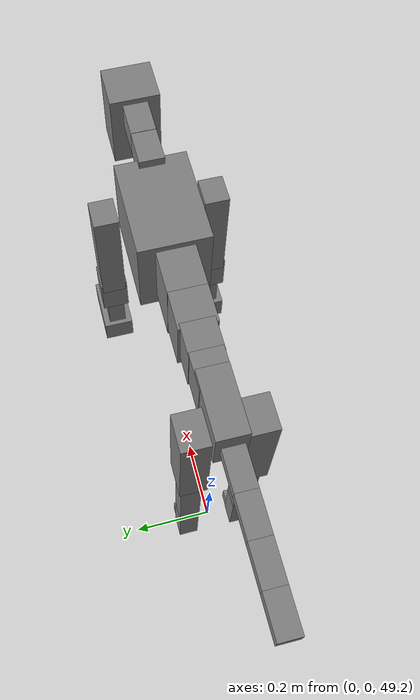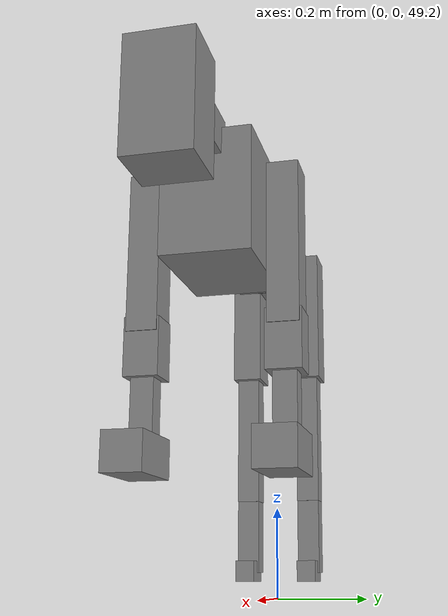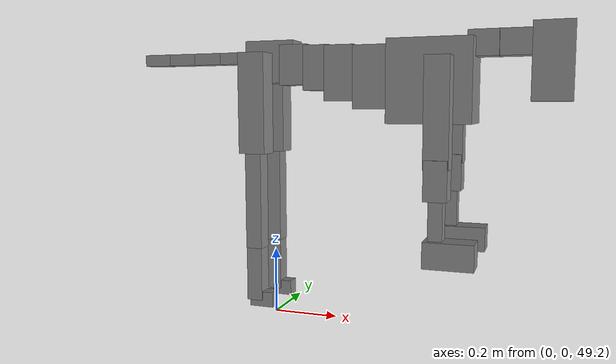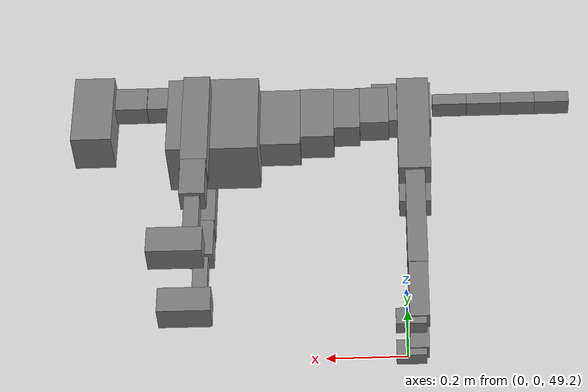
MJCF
<mujoco model="dog">

    <default>
        <joint armature="0.02" stiffness="1" damping="0.2" limited="true"/>
        <geom condim="3" friction="1 0.05 0.05" margin="0.01"/>
        <motor ctrllimited="true" ctrlrange="-1.0 1.0" forcelimited="true" gear="50"/>
    </default>

    <compiler inertiafromgeom="true" angle="radian"/>

    <option timestep="0.016" iterations="50" tolerance="1e-10" solver="Newton" jacobian="dense" cone="pyramidal"/>

    <size nconmax="20000" njmax="60000" nstack="5000000"/>
    <visual>
        <map force="0.1" zfar="30"/>
        <rgba haze="0.15 0.25 0.35 1"/>
        <quality shadowsize="2048"/>
        <global offwidth="800" offheight="800"/>
    </visual>

    <asset>
        <texture type="skybox" builtin="gradient" rgb1="0.3 0.5 0.7" rgb2="0 0 0" width="512" height="512"/>
        <texture name="texplane" type="2d" builtin="checker" rgb1=".2 .3 .4" rgb2=".1 0.15 0.2" width="512" height="512"
                 mark="cross" markrgb=".8 .8 .8"/>
        <texture name="texgeom" type="cube" builtin="flat" mark="cross" width="127" height="1278" rgb1="0.8 0.6 0.4"
                 rgb2="0.8 0.6 0.4" markrgb="1 1 1" random="0.01"/>

        <material name="matplane" reflectance="0.3" texture="texplane" texrepeat="1 1" texuniform="true"/>
        <material name="matgeom" texture="texgeom" texuniform="true" rgba="0.8 0.6 .4 1"/>
    </asset>

    <worldbody>
        <geom name="floor" pos="0 0 0" size="0 0 .25" type="plane" material="matplane" condim="3"/>

        <light directional="false" diffuse=".2 .2 .2" specular="0 0 0" pos="0 0 5" dir="0 0 -1" castshadow="false"/>
        <light mode="targetbodycom" target="torso" directional="false" diffuse=".8 .8 .8" specular="0.3 0.3 0.3"
               pos="0 0 4.0" dir="0 0 -1"/>

        <body name="root" pos="0 0 50">
            <freejoint name="root_1"/>
            <geom type="box" pos="0 0 -0.02" size="0.0774  0.0358  0.063" density="2030"/>

            <body name="spine1" pos="0.054 0 0">
                <joint name="spine1_y" axis="0 1 0" range="0 0.7" limited="true"/>
                <geom type="box" pos="0.02375 0 -0.03" size="0.04375  0.0375  0.05985" density="2030"/>

                <body name="spine2" pos="0.0612 0 0">
                    <joint name="spine2_y" axis="0 1 0" range="-0.15 0.15" limited="true"/>
                    <geom type="box" pos="0.03555  0  -0.04" size="0.04055  0.039  0.06615" density="2030"/>

                    <body name="spine3" pos="0.0730 0 0">
                        <joint name="spine3_y" axis="0 1 0" range="-0.15 0.15" limited="true"/>
                        <geom type="box" pos="0.03555  0  -0.057" size="0.04555  0.0445  0.081" density="2030"/>

                        <body name="spine4" pos="0.0780 0 0">
                            <joint name="spine4_y" axis="0 1 0" range="-0.15 0.15" limited="true"/>
                            <geom type="box" pos="0.05265  0  -0.07" size="0.05265  0.045  0.09135" density="2030"/>

                            <body name="torso" pos="0.1082 0 0">
                                <joint name="torso_y" axis="0 1 0" range="-0.15 0.15" limited="true"/>
                                <geom type="box" pos="0.11925  0  -0.085" size="0.11925  0.085  0.11745"
                                      density="2030"/>

                                <body name="neck1" pos="0.2160  0   0.0180">
                                    <joint name="neck1_y" axis="0 1 0" range="-1.2  -1" limited="true"/>
                                    <geom type="box" pos="0.0423  0  0" size="0.0423  0.03  0.036" density="2325"/>

                                    <body name="neck2" pos="0.0853  0  0">
                                        <joint name="neck2_y" axis="0 1 0" range="0.1  0" limited="true"/>
                                        <geom type="box" pos="0.0423  0  0" size="0.0423  0.03  0.036" density="2325"/>

                                        <body name="head" pos="0.0853  0  0">
                                            <joint name="head_y" axis="0 1 0" range="-0.3  -0.2" limited="true"/>
                                            <geom type="box" pos="0.0531  0  -0.055" size="0.0531  0.06  0.1044"
                                                  density="4030"/>

                                        </body>
                                    </body>
                                </body>

                                <body name="front_shoulder" pos="0.156  0   -0.0480">
                                    <joint name="front_shoulder_y" axis="0 1 0" range="-1 1.5" limited="true"/>
                                    <geom type="box" pos="0 0.13 -0.1240" size="0.0343  0.0293  0.1506" density="1158"/>
                                    <geom type="box" pos="0 -0.13 -0.1240" size="0.0343  0.0293  0.1506"
                                          density="1158"/>

                                    <body name="front_elbow" pos="0  0  -0.2479">
                                        <joint name="front_elbow_y" axis="0 1 0" range="-2 0" limited="true"/>
                                        <geom type="box" pos="0 0.13 -0.0550" size="0.0322  0.0329  0.0550"
                                              density="1081"/>
                                        <geom type="box" pos="0 -0.13 -0.0550" size="0.0322  0.0329  0.0550"
                                              density="1081"/>

                                        <body name="front_wrist" pos="0  0  -0.1101">
                                            <joint name="front_wrist_y" axis="0 1 0" range="-0.2 0" limited="true"/>
                                            <geom type="box" pos="0 0.13 -0.0609" size="0.0197  0.0218  0.0740"
                                                  density="1664"/>
                                            <geom type="box" pos="0 -0.13 -0.0609" size="0.0197  0.0218  0.0740"
                                                  density="1664"/>

                                            <body name="front_finger_end" pos="0  0  -0.1218">
                                                <joint name="front_finger_y" axis="0 1 0" range="-0.4 1"
                                                       limited="true"/>
                                                <geom type="box" pos="0.0377  0.13  -0.0214"
                                                      size="0.0691  0.0377  0.0364" density="1515"/>
                                                <geom type="box" pos="0.0377  -0.13  -0.0214"
                                                      size="0.0691  0.0377  0.0364" density="1515"/>

                                            </body>

                                        </body>
                                    </body>
                                </body>

                            </body>
                        </body>
                    </body>
                </body>
            </body>

            <body name="back_hip" pos="-0.03 0 -0.018">
                <joint name="back_hip_y" axis="0 1 0" range="-1.5 0.3" limited="true"/>
                <geom type="box" pos="0 0.07 -0.1268" size="0.0412  0.0323  0.1496" density="1154"/>
                <geom type="box" pos="0 -0.07 -0.1268" size="0.0412  0.0323  0.1496" density="1154"/>

                <body name="back_knee" pos="0  0  -0.2536">
                    <joint name="back_knee_y" axis="0 1 0" range="0 2.8" limited="true"/>
                    <geom type="box" pos="0 0.07 -0.1473" size="0.0249  0.0246  0.1628" density="1227"/>
                    <geom type="box" pos="0 -0.07 -0.1473" size="0.0249  0.0246  0.1628" density="1227"/>

                    <body name="back_ankle" pos="0  0  -0.2946">
                        <joint name="back_ankle_y" axis="0 1 0" range="-2.2 0" limited="true"/>
                        <geom type="box" pos="0 0.07 -0.0826" size="0.0240  0.0240  0.0939" density="1284"/>
                        <geom type="box" pos="0 -0.07 -0.0826" size="0.0240  0.0240  0.0939" density="1284"/>

                        <body name="back_toe_end" pos="0  0  -0.1653">
                            <joint name="back_toe_y" axis="0 1 0" range="-0.4 1" limited="true"/>
                            <geom type="box" pos="0.0205  0.07  -0.0078" size="0.0376  0.0205  0.0228" density="1515"/>
                            <geom type="box" pos="0.0205  -0.07  -0.0078" size="0.0376  0.0205  0.0228" density="1515"/>

                        </body>
                    </body>
                </body>
            </body>

            <body name="tail1" pos="-0.074 0 -0.006">
                <joint name="tail1_y" axis="0 1 0" range="-0.2 0.2" limited="true"/>
                <geom type="box" pos="-0.0536  0  0" size="0.045  0.025  0.0175" density="1587"/>

                <body name="tail2" pos="-0.09 0 0">
                    <joint name="tail2_y" axis="0 1 0" range="-0.2 0.2" limited="true"/>
                    <geom type="box" pos="-0.0536  0  0" size="0.045  0.025  0.0175" density="1587"/>

                    <body name="tail3" pos="-0.09 0 0">
                        <joint name="tail3_y" axis="0 1 0" range="-0.2 0.2" limited="true"/>
                        <geom type="box" pos="-0.0536  0  0" size="0.045  0.025  0.0175" density="1587"/>

                        <body name="tail4" pos="-0.09 0 0">
                            <joint name="tail4_y" axis="0 1 0" range="-0.2 0.2" limited="true"/>
                            <geom type="box" pos="-0.0536  0  0" size="0.045  0.025  0.0175" density="1587"/>

                        </body>
                    </body>
                </body>
            </body>
        </body>
    </worldbody>

    <actuator>
        <motor joint="spine1_y" forcerange="-150 150     "/>
        <motor joint="spine2_y" forcerange="-150 150     "/>
        <motor joint="spine3_y" forcerange="-150 150     "/>
        <motor joint="spine4_y" forcerange="-150 150     "/>
        <motor joint="torso_y" forcerange="-150 150     "/>
        <motor joint="neck1_y" forcerange="-100 100       "/>
        <motor joint="neck2_y" forcerange="-100 100       "/>
        <motor joint="head_y" forcerange="-150 150       "/>
        <motor joint="front_shoulder_y" forcerange="-146.38 148.87"/>
        <motor joint="front_elbow_y" forcerange="-189.80 149.63"/>
        <motor joint="front_wrist_y" forcerange="-106.76 68.03"/>
        <motor joint="front_finger_y" forcerange="-74.43 86.45"/>
        <motor joint="back_hip_y" forcerange="-322.72 308.14"/>
        <motor joint="back_knee_y" forcerange="-217.62 339.77"/>
        <motor joint="back_angle_y" forcerange="-105.65 177.91"/>
        <motor joint="back_toe_y" forcerange="-61.43 22.63"/>
        <motor joint="tail1_y" forcerange="-50 50     "/>
        <motor joint="tail2_y" forcerange="-50 50     "/>
        <motor joint="tail3_y" forcerange="-50 50     "/>
        <motor joint="tail4_y" forcerange="-50 50     "/>
    </actuator>
</mujoco>
